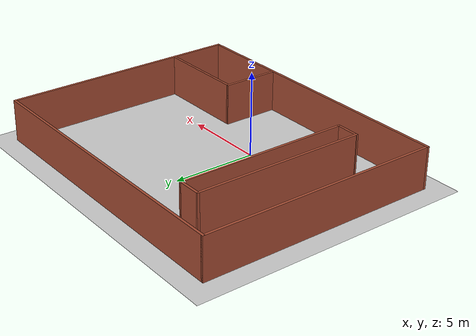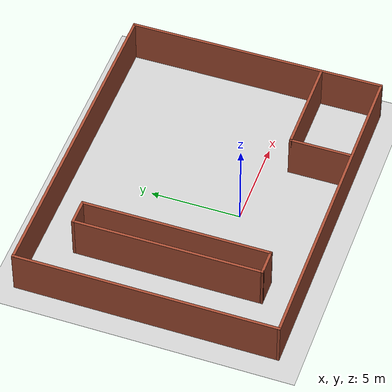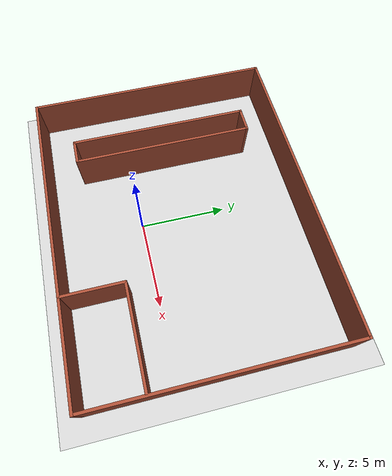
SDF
<sdf version="1.7">
 <world name="default">
  <light name="sun" type="directional">
   <pose>0 0 10 0 -0 0</pose>
   <diffuse>0.8 0.8 0.8 1</diffuse>
   <specular>0.2 0.2 0.2 1</specular>
   <attenuation>
    <range>1000</range>
    <constant>0.9</constant>
    <linear>0.01</linear>
    <quadratic>0.001</quadratic>
   </attenuation>
   <direction>-0.5 0.1 -0.9</direction>
   <spot><inner_angle>0</inner_angle><outer_angle>0</outer_angle><falloff>0</falloff></spot>
  </light>
  <model name="ground_plane">
   <static>1</static>
   <link name="link">
    <collision name="collision">
     <geometry><plane><normal>0 0 1</normal><size>100 100</size></plane></geometry>
     <surface><friction><ode><mu>100</mu><mu2>50</mu2></ode></friction></surface>
    </collision>
    <visual name="visual">
     <cast_shadows>0</cast_shadows>
     <geometry><plane><normal>0 0 1</normal><size>100 100</size></plane></geometry>
     <material>
      <script><uri>file://media/materials/scripts/gazebo.material</uri><name>Gazebo/Grey</name></script>
     </material>
    </visual>
   </link>
  </model>
  <gravity>0 0 -9.8</gravity>
  <magnetic_field>6e-06 2.3e-05 -4.2e-05</magnetic_field>
  <atmosphere type="adiabatic"/>
  <physics type="ode">
   <max_step_size>0.001</max_step_size>
   <real_time_factor>1</real_time_factor>
   <real_time_update_rate>1000</real_time_update_rate>
  </physics>
  <scene><ambient>0.4 0.4 0.4 1</ambient><background>0.7 0.7 0.7 1</background><shadows>1</shadows></scene>
  <audio><device>default</device></audio>
  <spherical_coordinates>
   <surface_model>EARTH_WGS84</surface_model>
   <latitude_deg>0</latitude_deg>
   <longitude_deg>0</longitude_deg>
   <elevation>0</elevation>
   <heading_deg>0</heading_deg>
  </spherical_coordinates>
  <model name="slim_blockage.world">
   <pose>0.525194 2.27621 0 0 -0 0</pose>
   <link name="Wall_10">
    <collision name="Wall_10_Collision">
     <geometry><box><size>17.9996 0.15 2.5</size></box></geometry>
     <pose>0 0 1.25 0 -0 0</pose>
    </collision>
    <visual name="Wall_10_Visual">
     <pose>0 0 1.25 0 -0 0</pose>
     <geometry><box><size>17.9996 0.15 2.5</size></box></geometry>
     <material>
      <script><uri>file://media/materials/scripts/gazebo.material</uri><name>Gazebo/Bricks</name></script>
      <ambient>1 1 1 1</ambient>
     </material>
     <meta><layer>0</layer></meta>
    </visual>
    <pose>-0 -7.175 0 0 -0 3.14157</pose>
   </link>
   <link name="Wall_11">
    <collision name="Wall_11_Collision">
     <geometry><box><size>14.5 0.15 2.5</size></box></geometry>
     <pose>0 0 1.25 0 -0 0</pose>
    </collision>
    <visual name="Wall_11_Visual">
     <pose>0 0 1.25 0 -0 0</pose>
     <geometry><box><size>14.5 0.15 2.5</size></box></geometry>
     <material>
      <script><uri>file://media/materials/scripts/gazebo.material</uri><name>Gazebo/Bricks</name></script>
      <ambient>1 1 1 1</ambient>
     </material>
     <meta><layer>0</layer></meta>
    </visual>
    <pose>-8.92481 0.000206 0 0 -0 1.5708</pose>
   </link>
   <link name="Wall_12">
    <collision name="Wall_12_Collision">
     <geometry><box><size>17.9996 0.15 2.5</size></box></geometry>
     <pose>0 0 1.25 0 -0 0</pose>
    </collision>
    <visual name="Wall_12_Visual">
     <pose>0 0 1.25 0 -0 0</pose>
     <geometry><box><size>17.9996 0.15 2.5</size></box></geometry>
     <material>
      <script><uri>file://media/materials/scripts/gazebo.material</uri><name>Gazebo/Bricks</name></script>
      <ambient>1 1 1 1</ambient>
     </material>
     <meta><layer>0</layer></meta>
    </visual>
    <pose>-0 7.175 0 0 -0 -2.3e-05</pose>
   </link>
   <link name="Wall_14">
    <collision name="Wall_14_Collision">
     <geometry><box><size>10.5 0.15 2.5</size></box></geometry>
     <pose>0 0 1.25 0 -0 0</pose>
    </collision>
    <visual name="Wall_14_Visual">
     <pose>0 0 1.25 0 -0 0</pose>
     <geometry><box><size>10.5 0.15 2.5</size></box></geometry>
     <material>
      <script><uri>file://media/materials/scripts/gazebo.material</uri><name>Gazebo/Bricks</name></script>
      <ambient>1 1 1 1</ambient>
     </material>
     <meta><layer>0</layer></meta>
    </visual>
    <pose>-5.71219 -0.042206 0 0 -0 -1.5708</pose>
   </link>
   <link name="Wall_15">
    <collision name="Wall_15_Collision">
     <geometry><box><size>1.49992 0.15 2.5</size></box></geometry>
     <pose>0 0 1.25 0 -0 0</pose>
    </collision>
    <visual name="Wall_15_Visual">
     <pose>0 0 1.25 0 -0 0</pose>
     <geometry><box><size>1.49992 0.15 2.5</size></box></geometry>
     <material>
      <script><uri>file://media/materials/scripts/gazebo.material</uri><name>Gazebo/Bricks</name></script>
      <ambient>1 1 1 1</ambient>
     </material>
     <meta><layer>0</layer></meta>
    </visual>
    <pose>-5.03724 -5.21702 0 0 -0 0.000279</pose>
   </link>
   <link name="Wall_16">
    <collision name="Wall_16_Collision">
     <geometry><box><size>10.5 0.15 2.5</size></box></geometry>
     <pose>0 0 1.25 0 -0 0</pose>
    </collision>
    <visual name="Wall_16_Visual">
     <pose>0 0 1.25 0 -0 0</pose>
     <geometry><box><size>10.5 0.15 2.5</size></box></geometry>
     <material>
      <script><uri>file://media/materials/scripts/gazebo.material</uri><name>Gazebo/Bricks</name></script>
      <ambient>1 1 1 1</ambient>
     </material>
     <meta><layer>0</layer></meta>
    </visual>
    <pose>-4.36228 -0.041829 0 0 -0 1.5708</pose>
   </link>
   <link name="Wall_17">
    <collision name="Wall_17_Collision">
     <geometry><box><size>1.49992 0.15 2.5</size></box></geometry>
     <pose>0 0 1.25 0 -0 0</pose>
    </collision>
    <visual name="Wall_17_Visual">
     <pose>0 0 1.25 0 -0 0</pose>
     <geometry><box><size>1.49992 0.15 2.5</size></box></geometry>
     <material>
      <script><uri>file://media/materials/scripts/gazebo.material</uri><name>Gazebo/Bricks</name></script>
      <ambient>1 1 1 1</ambient>
     </material>
     <meta><layer>0</layer></meta>
    </visual>
    <pose>-5.03724 5.13298 0 0 -0 -3.14131</pose>
   </link>
   <link name="Wall_19">
    <collision name="Wall_19_Collision">
     <geometry><box><size>3.5 0.15 2.5</size></box></geometry>
     <pose>0 0 1.25 0 -0 0</pose>
    </collision>
    <visual name="Wall_19_Visual">
     <pose>0 0 1.25 0 -0 0</pose>
     <geometry><box><size>3.5 0.15 2.5</size></box></geometry>
     <material>
      <script><uri>file://media/materials/scripts/gazebo.material</uri><name>Gazebo/Bricks</name></script>
      <ambient>1 1 1 1</ambient>
     </material>
     <meta><layer>0</layer></meta>
    </visual>
    <pose>3.45905 -5.43811 0 0 -0 1.5708</pose>
   </link>
   <link name="Wall_21">
    <collision name="Wall_21_Collision">
     <geometry><box><size>5.5 0.15 2.5</size></box></geometry>
     <pose>0 0 1.25 0 -0 0</pose>
    </collision>
    <visual name="Wall_21_Visual">
     <pose>0 0 1.25 0 -0 0</pose>
     <geometry><box><size>5.5 0.15 2.5</size></box></geometry>
     <material>
      <script><uri>file://media/materials/scripts/gazebo.material</uri><name>Gazebo/Bricks</name></script>
      <ambient>1 1 1 1</ambient>
     </material>
     <meta><layer>0</layer></meta>
    </visual>
    <pose>6.13405 -3.76311 0 0 -0 0</pose>
   </link>
   <link name="Wall_8">
    <collision name="Wall_8_Collision">
     <geometry><box><size>14.5 0.15 2.5</size></box></geometry>
     <pose>0 0 1.25 0 -0 0</pose>
    </collision>
    <visual name="Wall_8_Visual">
     <pose>0 0 1.25 0 -0 0</pose>
     <geometry><box><size>14.5 0.15 2.5</size></box></geometry>
     <material>
      <script><uri>file://media/materials/scripts/gazebo.material</uri><name>Gazebo/Bricks</name></script>
      <ambient>1 1 1 1</ambient>
     </material>
     <meta><layer>0</layer></meta>
    </visual>
    <pose>8.92481 -0.000206 0 0 -0 -1.5708</pose>
   </link>
   <static>1</static>
  </model>
 </world>
</sdf>
